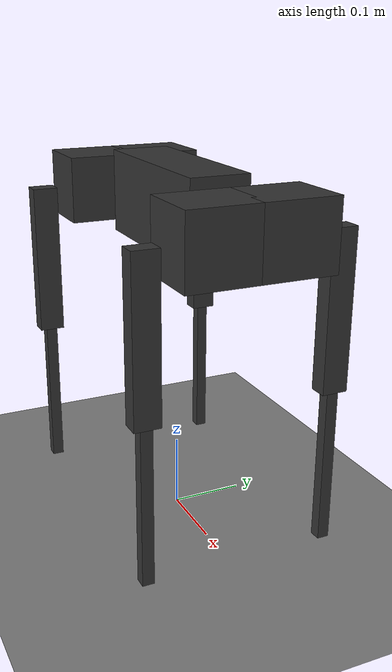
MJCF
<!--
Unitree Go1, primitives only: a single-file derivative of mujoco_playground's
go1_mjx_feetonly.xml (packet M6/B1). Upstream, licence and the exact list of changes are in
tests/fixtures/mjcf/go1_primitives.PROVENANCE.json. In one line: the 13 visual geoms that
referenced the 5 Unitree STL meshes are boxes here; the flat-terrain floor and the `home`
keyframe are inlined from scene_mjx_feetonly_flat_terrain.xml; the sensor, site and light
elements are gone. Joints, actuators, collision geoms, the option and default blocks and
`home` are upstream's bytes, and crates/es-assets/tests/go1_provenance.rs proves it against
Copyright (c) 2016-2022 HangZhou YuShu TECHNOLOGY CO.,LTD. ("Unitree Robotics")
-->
<mujoco model="go1 feet only">
  <compiler angle="radian" autolimits="true"/>

  <option iterations="1" ls_iterations="5" timestep="0.004" integrator="Euler">
    <flag eulerdamp="disable"/>
  </option>

  <default>
    <default class="go1">
      <!-- This globaly disables all collisions. -->
      <geom condim="1" contype="0" conaffinity="0"/>
      <joint axis="0 1 0" armature="0.005" damping="0.5"/>
      <position forcerange="-23.7 23.7" inheritrange="1" kp="35"/>
      <default class="abduction">
        <joint axis="1 0 0" range="-0.863 0.863" frictionloss="0.3"/>
      </default>
      <default class="hip">
        <joint range="-0.686 4.501" frictionloss="0.3"/>
      </default>
      <default class="knee">
        <joint range="-2.818 -0.888" frictionloss="1.0"/>
        <position forcerange="-35.55 35.55"/>
      </default>
      <default class="visual">
        <geom type="box" contype="0" conaffinity="0" group="2" material="dark"/>
      </default>
      <default class="collision">
        <geom group="3" type="capsule"/>
        <default class="hip_left1">
          <geom size="0.046 0.02" pos="0 0.045 0" quat="1 1 0 0" type="cylinder"/>
        </default>
        <default class="hip_left2">
          <geom size="0.031 0.02" pos="0 0.065 0" quat="1 1 0 0" type="cylinder"/>
        </default>
        <default class="hip_left3">
          <geom size="0.046 0.02" quat="1 1 0 0" type="cylinder"/>
        </default>
        <default class="hip_right1">
          <geom size="0.046 0.02" pos="0 -0.045 0" quat="1 1 0 0" type="cylinder"/>
        </default>
        <default class="hip_right2">
          <geom size="0.031 0.02" pos="0 -0.065 0" quat="1 1 0 0" type="cylinder"/>
        </default>
        <default class="hip_right3">
          <geom size="0.046 0.02" quat="1 1 0 0" type="cylinder"/>
        </default>
        <default class="thigh1">
          <geom size="0.015" fromto="-0.02 0 0 -0.02 0 -0.16"/>
        </default>
        <default class="thigh2">
          <geom size="0.015" fromto="0 0 0 -0.02 0 -0.1"/>
        </default>
        <default class="thigh3">
          <geom size="0.015" fromto="-0.02 0 -0.16 0 0 -0.2"/>
        </default>
        <default class="calf1">
          <geom size="0.01" fromto="0 0 0 0.02 0 -0.13"/>
        </default>
        <default class="calf2">
          <geom size="0.01" fromto="0.02 0 -0.13 0 0 -0.2"/>
        </default>
        <default class="foot">
          <geom type="sphere" size="0.023" pos="0 0 -0.213" solimp="0.9 .95 0.023" contype="0" conaffinity="1"/>
        </default>
      </default>
    </default>
  </default>

  <asset>
    <material name="dark" rgba="0.2 0.2 0.2 1"/>
  </asset>

  <worldbody>
    <geom name="floor" size="0 0 0.01" type="plane" contype="1" conaffinity="0" priority="1"
      friction="0.6" condim="3"/>
    <body name="trunk" pos="0 0 0.445" childclass="go1">
      <camera name="track" pos="0.846 -1.3 0.316" xyaxes="0.866 0.500 0.000 -0.171 0.296 0.940" mode="trackcom"/>
      <camera name="top" pos="-1 0 1" xyaxes="0 -1 0 0.7 0 0.7" mode="trackcom"/>
      <camera name="side" pos="0 -1 .3" xyaxes="1 0 0 0 1 2" mode="trackcom"/>
      <camera name="back" pos="-1 0 .3" xyaxes="0 -1 0 1 0 2" mode="trackcom"/>
      <inertial pos="0.0223 0.002 -0.0005" quat="-0.00342088 0.705204 0.000106698 0.708996" mass="5.204"
        diaginertia="0.0716565 0.0630105 0.0168101"/>
      <freejoint/>
      <geom class="visual" size="0.125 0.04 0.057"/>
      <geom class="collision" size="0.125 0.04 0.057" type="box"/>
      <geom class="collision" quat="1 0 1 0" pos="0 -0.04 0" size="0.058 0.125" type="cylinder"/>
      <geom class="collision" quat="1 0 1 0" pos="0 +0.04 0" size="0.058 0.125" type="cylinder"/>
      <body name="FR_hip" pos="0.1881 -0.04675 0">
        <inertial pos="-0.0049166 0.00762615 -8.865e-05" quat="0.507341 0.514169 0.495027 0.482891" mass="0.68"
          diaginertia="0.000734064 0.000468438 0.000398719"/>
        <joint class="abduction" name="FR_hip_joint"/>
        <geom class="visual" size="0.046 0.05 0.046" quat="1 0 0 0"/>
        <geom class="hip_right1"/>
        <geom class="hip_right2"/>
        <body name="FR_thigh" pos="0 -0.08 0">
          <inertial pos="-0.00304722 0.019315 -0.0305004" quat="0.65243 -0.0272313 0.0775126 0.753383" mass="1.009"
            diaginertia="0.00478717 0.00460903 0.000709268"/>
          <joint class="hip" name="FR_thigh_joint"/>
          <geom class="visual" size="0.0125 0.0175 0.1065" pos="0 0 -0.1065"/>
          <geom class="thigh1"/>
          <geom class="thigh2"/>
          <geom class="thigh3"/>
          <body name="FR_calf" pos="0 0 -0.213">
            <inertial pos="0.00429862 0.000976676 -0.146197" quat="0.691246 0.00357467 0.00511118 0.722592"
              mass="0.195862" diaginertia="0.00149767 0.00148468 3.58427e-05"/>
            <joint class="knee" name="FR_calf_joint"/>
            <geom class="visual" size="0.008 0.008 0.1065" pos="0 0 -0.1065"/>
            <geom class="calf1"/>
            <geom class="calf2"/>
            <geom name="FR" class="foot"/>
          </body>
        </body>
      </body>
      <body name="FL_hip" pos="0.1881 0.04675 0">
        <inertial pos="-0.0049166 -0.00762615 -8.865e-05" quat="0.482891 0.495027 0.514169 0.507341" mass="0.68"
          diaginertia="0.000734064 0.000468438 0.000398719"/>
        <joint class="abduction" name="FL_hip_joint"/>
        <geom class="visual" size="0.046 0.05 0.046"/>
        <geom class="hip_left1"/>
        <geom class="hip_left2"/>
        <body name="FL_thigh" pos="0 0.08 0">
          <inertial pos="-0.00304722 -0.019315 -0.0305004" quat="0.753383 0.0775126 -0.0272313 0.65243" mass="1.009"
            diaginertia="0.00478717 0.00460903 0.000709268"/>
          <joint class="hip" name="FL_thigh_joint"/>
          <geom class="visual" size="0.0125 0.0175 0.1065" pos="0 0 -0.1065"/>
          <geom class="thigh1"/>
          <geom class="thigh2"/>
          <geom class="thigh3"/>
          <body name="FL_calf" pos="0 0 -0.213">
            <inertial pos="0.00429862 0.000976676 -0.146197" quat="0.691246 0.00357467 0.00511118 0.722592"
              mass="0.195862" diaginertia="0.00149767 0.00148468 3.58427e-05"/>
            <joint class="knee" name="FL_calf_joint"/>
            <geom class="visual" size="0.008 0.008 0.1065" pos="0 0 -0.1065"/>
            <geom class="calf1"/>
            <geom class="calf2"/>
            <geom name="FL" class="foot"/>
          </body>
        </body>
      </body>
      <body name="RR_hip" pos="-0.1881 -0.04675 0">
        <inertial pos="0.0049166 0.00762615 -8.865e-05" quat="0.495027 0.482891 0.507341 0.514169" mass="0.68"
          diaginertia="0.000734064 0.000468438 0.000398719"/>
        <joint class="abduction" name="RR_hip_joint"/>
        <geom class="visual" size="0.046 0.05 0.046" quat="0 0 0 -1"/>
        <geom class="hip_right1"/>
        <geom class="hip_right2"/>
        <geom class="hip_right3"/>
        <body name="RR_thigh" pos="0 -0.08 0">
          <inertial pos="-0.00304722 0.019315 -0.0305004" quat="0.65243 -0.0272313 0.0775126 0.753383" mass="1.009"
            diaginertia="0.00478717 0.00460903 0.000709268"/>
          <joint class="hip" name="RR_thigh_joint"/>
          <geom class="visual" size="0.0125 0.0175 0.1065" pos="0 0 -0.1065"/>
          <geom class="thigh1"/>
          <geom class="thigh2"/>
          <geom class="thigh3"/>
          <body name="RR_calf" pos="0 0 -0.213">
            <inertial pos="0.00429862 0.000976676 -0.146197" quat="0.691246 0.00357467 0.00511118 0.722592"
              mass="0.195862" diaginertia="0.00149767 0.00148468 3.58427e-05"/>
            <joint class="knee" name="RR_calf_joint"/>
            <geom class="visual" size="0.008 0.008 0.1065" pos="0 0 -0.1065"/>
            <geom class="calf1"/>
            <geom class="calf2"/>
            <geom name="RR" class="foot"/>
          </body>
        </body>
      </body>
      <body name="RL_hip" pos="-0.1881 0.04675 0">
        <inertial pos="0.0049166 -0.00762615 -8.865e-05" quat="0.514169 0.507341 0.482891 0.495027" mass="0.68"
          diaginertia="0.000734064 0.000468438 0.000398719"/>
        <joint class="abduction" name="RL_hip_joint"/>
        <geom class="visual" size="0.046 0.05 0.046" quat="0 0 1 0"/>
        <geom class="hip_left1"/>
        <geom class="hip_left2"/>
        <geom class="hip_left3"/>
        <body name="RL_thigh" pos="0 0.08 0">
          <inertial pos="-0.00304722 -0.019315 -0.0305004" quat="0.753383 0.0775126 -0.0272313 0.65243" mass="1.009"
            diaginertia="0.00478717 0.00460903 0.000709268"/>
          <joint class="hip" name="RL_thigh_joint"/>
          <geom class="visual" size="0.0125 0.0175 0.1065" pos="0 0 -0.1065"/>
          <geom class="thigh1"/>
          <geom class="thigh2"/>
          <geom class="thigh3"/>
          <body name="RL_calf" pos="0 0 -0.213">
            <inertial pos="0.00429862 0.000976676 -0.146197" quat="0.691246 0.00357467 0.00511118 0.722592"
              mass="0.195862" diaginertia="0.00149767 0.00148468 3.58427e-05"/>
            <joint class="knee" name="RL_calf_joint"/>
            <geom class="visual" size="0.008 0.008 0.1065" pos="0 0 -0.1065"/>
            <geom class="calf1"/>
            <geom class="calf2"/>
            <geom name="RL" class="foot"/>
          </body>
        </body>
      </body>
    </body>
  </worldbody>

  <actuator>
    <position class="abduction" name="FR_hip" joint="FR_hip_joint"/>
    <position class="hip" name="FR_thigh" joint="FR_thigh_joint"/>
    <position class="knee" name="FR_calf" joint="FR_calf_joint"/>
    <position class="abduction" name="FL_hip" joint="FL_hip_joint"/>
    <position class="hip" name="FL_thigh" joint="FL_thigh_joint"/>
    <position class="knee" name="FL_calf" joint="FL_calf_joint"/>
    <position class="abduction" name="RR_hip" joint="RR_hip_joint"/>
    <position class="hip" name="RR_thigh" joint="RR_thigh_joint"/>
    <position class="knee" name="RR_calf" joint="RR_calf_joint"/>
    <position class="abduction" name="RL_hip" joint="RL_hip_joint"/>
    <position class="hip" name="RL_thigh" joint="RL_thigh_joint"/>
    <position class="knee" name="RL_calf" joint="RL_calf_joint"/>
  </actuator>

  <keyframe>
    <key name="home" qpos="
    0 0 0.278
    1 0 0 0
    0.1 0.9 -1.8
    -0.1 0.9 -1.8
    0.1 0.9 -1.8
    -0.1 0.9 -1.8"
      ctrl="0.1 0.9 -1.8 -0.1 0.9 -1.8 0.1 0.9 -1.8 -0.1 0.9 -1.8"/>
  </keyframe>
</mujoco>
